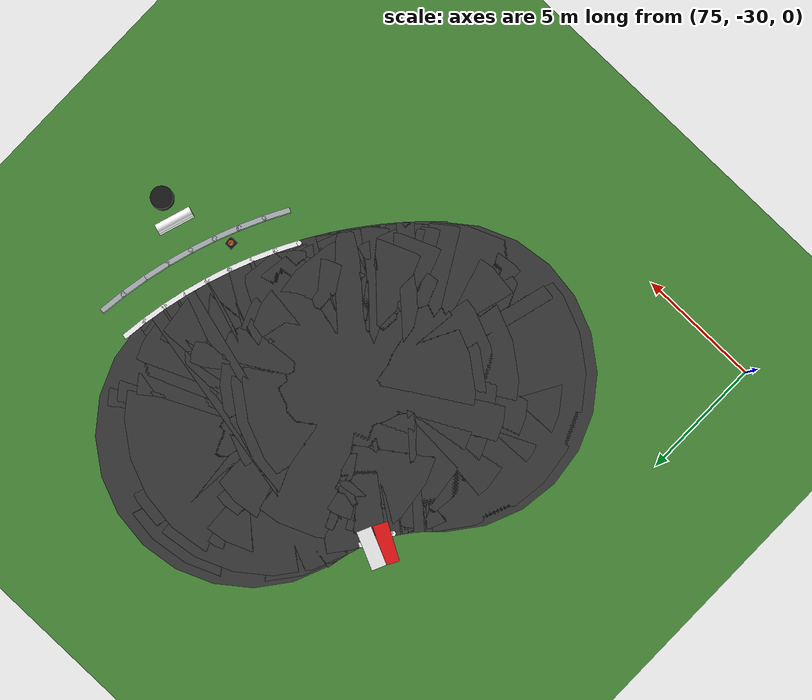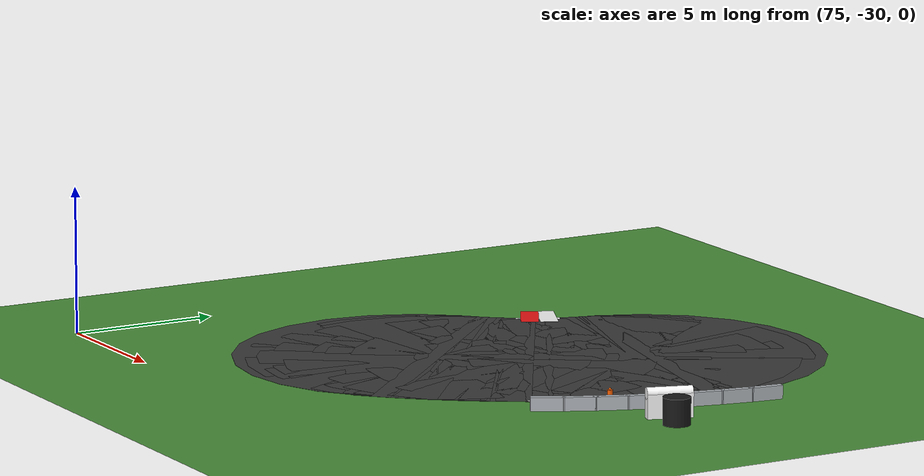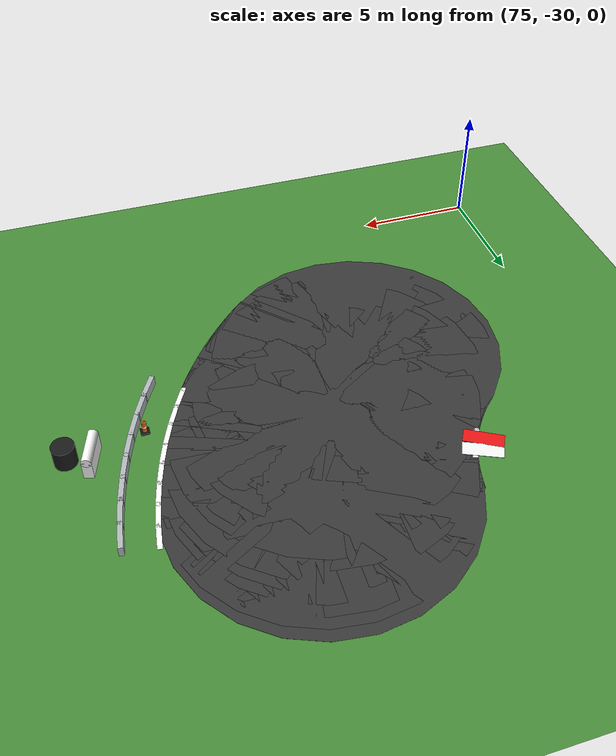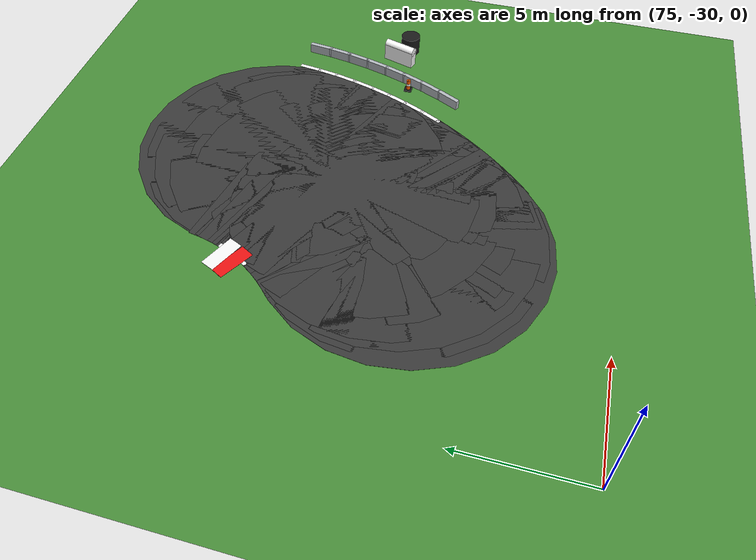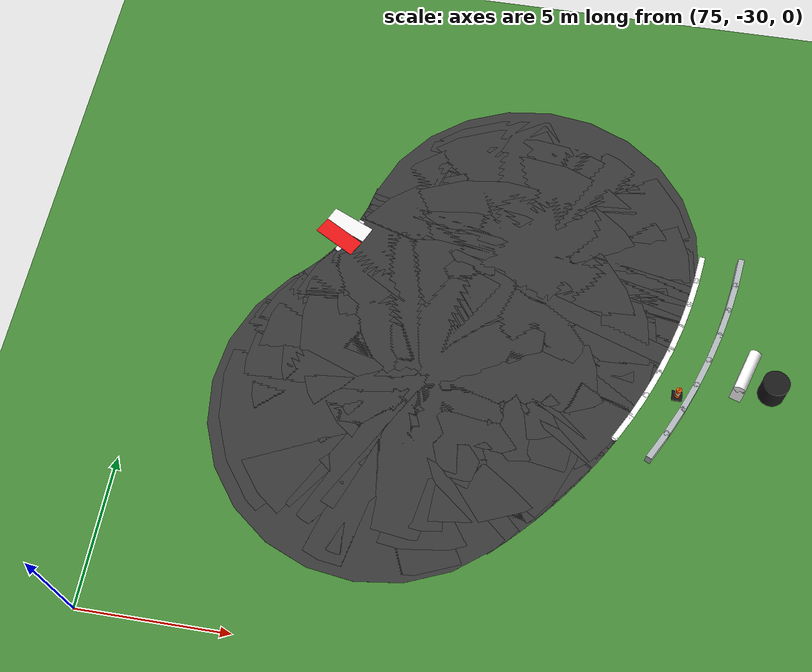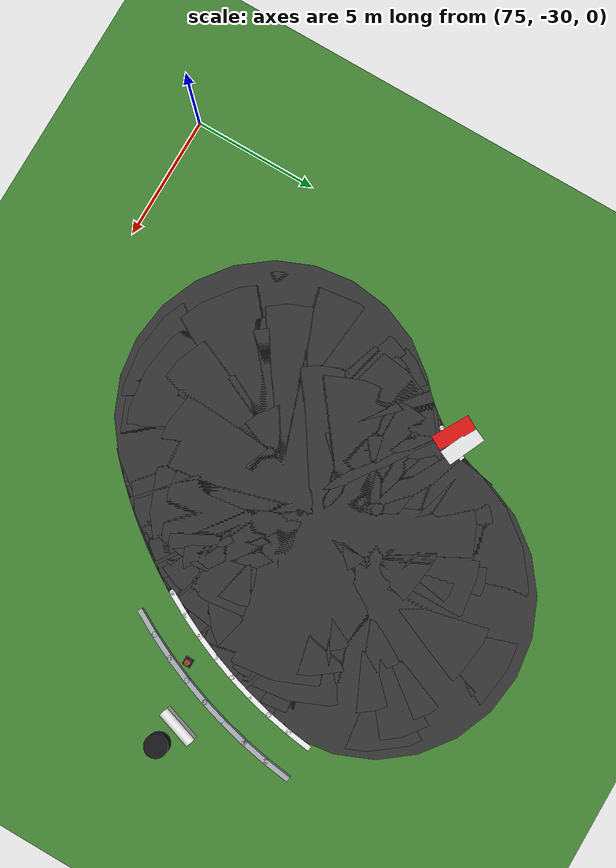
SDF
<sdf version="1.6">
 <world name="sem_silesia_ring_2026">
  <model name="ground_plane">
   <static>true</static>
   <link name="link">
    <collision name="collision">
     <geometry><plane><normal>0 0 1</normal><size>600 600</size></plane></geometry>
     <surface><friction><ode><mu>0.6</mu><mu2>0.6</mu2></ode></friction></surface>
    </collision>
    <visual name="visual">
     <geometry><plane><normal>0 0 1</normal><size>600 600</size></plane></geometry>
     <material><ambient>0.28 0.55 0.22 1</ambient><diffuse>0.28 0.55 0.22 1</diffuse></material>
    </visual>
   </link>
  </model>
  <model name="road_R_jnt21">
   <static>true</static>
   <pose>83.3641 -21.7893 0.0030 0 0 0</pose>
   <link name="link">
    <visual name="v">
     <geometry><cylinder><radius>6.0000</radius><length>0.0060</length></cylinder></geometry>
     <material><ambient>0.22 0.22 0.22 1</ambient><diffuse>0.22 0.22 0.22 1</diffuse></material>
    </visual>
    <collision name="c">
     <geometry><cylinder><radius>6.0000</radius><length>0.0060</length></cylinder></geometry>
     <surface><friction><ode><mu>0.9</mu><mu2>0.9</mu2></ode></friction></surface>
    </collision>
   </link>
  </model>
  <model name="road_R_s21">
   <static>true</static>
   <pose>83.5250 -21.6419 0.0030 0 0 0.7505</pose>
   <link name="link">
    <visual name="v">
     <geometry><box><size>0.6957 12.0000 0.0060</size></box></geometry>
     <material><ambient>0.22 0.22 0.22 1</ambient><diffuse>0.22 0.22 0.22 1</diffuse></material>
    </visual>
    <collision name="c">
     <geometry><box><size>0.6957 12.0000 0.0060</size></box></geometry>
     <surface><friction><ode><mu>0.9</mu><mu2>0.9</mu2></ode></friction></surface>
    </collision>
   </link>
  </model>
  <model name="road_R_jnt22">
   <static>true</static>
   <pose>83.6832 -21.4917 0.0030 0 0 0</pose>
   <link name="link">
    <visual name="v">
     <geometry><cylinder><radius>6.0000</radius><length>0.0060</length></cylinder></geometry>
     <material><ambient>0.22 0.22 0.22 1</ambient><diffuse>0.22 0.22 0.22 1</diffuse></material>
    </visual>
    <collision name="c">
     <geometry><cylinder><radius>6.0000</radius><length>0.0060</length></cylinder></geometry>
     <surface><friction><ode><mu>0.9</mu><mu2>0.9</mu2></ode></friction></surface>
    </collision>
   </link>
  </model>
  <model name="road_R_s22">
   <static>true</static>
   <pose>83.8388 -21.3388 0.0030 0 0 0.7854</pose>
   <link name="link">
    <visual name="v">
     <geometry><box><size>0.6957 12.0000 0.0060</size></box></geometry>
     <material><ambient>0.22 0.22 0.22 1</ambient><diffuse>0.22 0.22 0.22 1</diffuse></material>
    </visual>
    <collision name="c">
     <geometry><box><size>0.6957 12.0000 0.0060</size></box></geometry>
     <surface><friction><ode><mu>0.9</mu><mu2>0.9</mu2></ode></friction></surface>
    </collision>
   </link>
  </model>
  <model name="road_R_jnt23">
   <static>true</static>
   <pose>83.9917 -21.1832 0.0030 0 0 0</pose>
   <link name="link">
    <visual name="v">
     <geometry><cylinder><radius>6.0000</radius><length>0.0060</length></cylinder></geometry>
     <material><ambient>0.22 0.22 0.22 1</ambient><diffuse>0.22 0.22 0.22 1</diffuse></material>
    </visual>
    <collision name="c">
     <geometry><cylinder><radius>6.0000</radius><length>0.0060</length></cylinder></geometry>
     <surface><friction><ode><mu>0.9</mu><mu2>0.9</mu2></ode></friction></surface>
    </collision>
   </link>
  </model>
  <model name="road_R_s23">
   <static>true</static>
   <pose>84.1419 -21.0250 0.0030 0 0 0.8203</pose>
   <link name="link">
    <visual name="v">
     <geometry><box><size>0.6957 12.0000 0.0060</size></box></geometry>
     <material><ambient>0.22 0.22 0.22 1</ambient><diffuse>0.22 0.22 0.22 1</diffuse></material>
    </visual>
    <collision name="c">
     <geometry><box><size>0.6957 12.0000 0.0060</size></box></geometry>
     <surface><friction><ode><mu>0.9</mu><mu2>0.9</mu2></ode></friction></surface>
    </collision>
   </link>
  </model>
  <model name="road_R_jnt24">
   <static>true</static>
   <pose>84.2893 -20.8641 0.0030 0 0 0</pose>
   <link name="link">
    <visual name="v">
     <geometry><cylinder><radius>6.0000</radius><length>0.0060</length></cylinder></geometry>
     <material><ambient>0.22 0.22 0.22 1</ambient><diffuse>0.22 0.22 0.22 1</diffuse></material>
    </visual>
    <collision name="c">
     <geometry><cylinder><radius>6.0000</radius><length>0.0060</length></cylinder></geometry>
     <surface><friction><ode><mu>0.9</mu><mu2>0.9</mu2></ode></friction></surface>
    </collision>
   </link>
  </model>
  <model name="road_R_s24">
   <static>true</static>
   <pose>84.4339 -20.7007 0.0030 0 0 0.8552</pose>
   <link name="link">
    <visual name="v">
     <geometry><box><size>0.6957 12.0000 0.0060</size></box></geometry>
     <material><ambient>0.22 0.22 0.22 1</ambient><diffuse>0.22 0.22 0.22 1</diffuse></material>
    </visual>
    <collision name="c">
     <geometry><box><size>0.6957 12.0000 0.0060</size></box></geometry>
     <surface><friction><ode><mu>0.9</mu><mu2>0.9</mu2></ode></friction></surface>
    </collision>
   </link>
  </model>
  <model name="road_R_jnt25">
   <static>true</static>
   <pose>84.5756 -20.5348 0.0030 0 0 0</pose>
   <link name="link">
    <visual name="v">
     <geometry><cylinder><radius>6.0000</radius><length>0.0060</length></cylinder></geometry>
     <material><ambient>0.22 0.22 0.22 1</ambient><diffuse>0.22 0.22 0.22 1</diffuse></material>
    </visual>
    <collision name="c">
     <geometry><cylinder><radius>6.0000</radius><length>0.0060</length></cylinder></geometry>
     <surface><friction><ode><mu>0.9</mu><mu2>0.9</mu2></ode></friction></surface>
    </collision>
   </link>
  </model>
  <model name="road_R_s25">
   <static>true</static>
   <pose>84.7143 -20.3665 0.0030 0 0 0.8901</pose>
   <link name="link">
    <visual name="v">
     <geometry><box><size>0.6957 12.0000 0.0060</size></box></geometry>
     <material><ambient>0.22 0.22 0.22 1</ambient><diffuse>0.22 0.22 0.22 1</diffuse></material>
    </visual>
    <collision name="c">
     <geometry><box><size>0.6957 12.0000 0.0060</size></box></geometry>
     <surface><friction><ode><mu>0.9</mu><mu2>0.9</mu2></ode></friction></surface>
    </collision>
   </link>
  </model>
  <model name="road_R_jnt26">
   <static>true</static>
   <pose>84.8501 -20.1958 0.0030 0 0 0</pose>
   <link name="link">
    <visual name="v">
     <geometry><cylinder><radius>6.0000</radius><length>0.0060</length></cylinder></geometry>
     <material><ambient>0.22 0.22 0.22 1</ambient><diffuse>0.22 0.22 0.22 1</diffuse></material>
    </visual>
    <collision name="c">
     <geometry><cylinder><radius>6.0000</radius><length>0.0060</length></cylinder></geometry>
     <surface><friction><ode><mu>0.9</mu><mu2>0.9</mu2></ode></friction></surface>
    </collision>
   </link>
  </model>
  <model name="road_R_s26">
   <static>true</static>
   <pose>84.9829 -20.0227 0.0030 0 0 0.9250</pose>
   <link name="link">
    <visual name="v">
     <geometry><box><size>0.6957 12.0000 0.0060</size></box></geometry>
     <material><ambient>0.22 0.22 0.22 1</ambient><diffuse>0.22 0.22 0.22 1</diffuse></material>
    </visual>
    <collision name="c">
     <geometry><box><size>0.6957 12.0000 0.0060</size></box></geometry>
     <surface><friction><ode><mu>0.9</mu><mu2>0.9</mu2></ode></friction></surface>
    </collision>
   </link>
  </model>
  <model name="road_R_jnt27">
   <static>true</static>
   <pose>85.1127 -19.8473 0.0030 0 0 0</pose>
   <link name="link">
    <visual name="v">
     <geometry><cylinder><radius>6.0000</radius><length>0.0060</length></cylinder></geometry>
     <material><ambient>0.22 0.22 0.22 1</ambient><diffuse>0.22 0.22 0.22 1</diffuse></material>
    </visual>
    <collision name="c">
     <geometry><cylinder><radius>6.0000</radius><length>0.0060</length></cylinder></geometry>
     <surface><friction><ode><mu>0.9</mu><mu2>0.9</mu2></ode></friction></surface>
    </collision>
   </link>
  </model>
  <model name="road_R_s27">
   <static>true</static>
   <pose>85.2394 -19.6697 0.0030 0 0 0.9599</pose>
   <link name="link">
    <visual name="v">
     <geometry><box><size>0.6957 12.0000 0.0060</size></box></geometry>
     <material><ambient>0.22 0.22 0.22 1</ambient><diffuse>0.22 0.22 0.22 1</diffuse></material>
    </visual>
    <collision name="c">
     <geometry><box><size>0.6957 12.0000 0.0060</size></box></geometry>
     <surface><friction><ode><mu>0.9</mu><mu2>0.9</mu2></ode></friction></surface>
    </collision>
   </link>
  </model>
  <model name="road_R_jnt28">
   <static>true</static>
   <pose>85.3630 -19.4899 0.0030 0 0 0</pose>
   <link name="link">
    <visual name="v">
     <geometry><cylinder><radius>6.0000</radius><length>0.0060</length></cylinder></geometry>
     <material><ambient>0.22 0.22 0.22 1</ambient><diffuse>0.22 0.22 0.22 1</diffuse></material>
    </visual>
    <collision name="c">
     <geometry><cylinder><radius>6.0000</radius><length>0.0060</length></cylinder></geometry>
     <surface><friction><ode><mu>0.9</mu><mu2>0.9</mu2></ode></friction></surface>
    </collision>
   </link>
  </model>
  <model name="road_R_s28">
   <static>true</static>
   <pose>85.4834 -19.3080 0.0030 0 0 0.9948</pose>
   <link name="link">
    <visual name="v">
     <geometry><box><size>0.6957 12.0000 0.0060</size></box></geometry>
     <material><ambient>0.22 0.22 0.22 1</ambient><diffuse>0.22 0.22 0.22 1</diffuse></material>
    </visual>
    <collision name="c">
     <geometry><box><size>0.6957 12.0000 0.0060</size></box></geometry>
     <surface><friction><ode><mu>0.9</mu><mu2>0.9</mu2></ode></friction></surface>
    </collision>
   </link>
  </model>
  <model name="road_R_jnt29">
   <static>true</static>
   <pose>85.6006 -19.1240 0.0030 0 0 0</pose>
   <link name="link">
    <visual name="v">
     <geometry><cylinder><radius>6.0000</radius><length>0.0060</length></cylinder></geometry>
     <material><ambient>0.22 0.22 0.22 1</ambient><diffuse>0.22 0.22 0.22 1</diffuse></material>
    </visual>
    <collision name="c">
     <geometry><cylinder><radius>6.0000</radius><length>0.0060</length></cylinder></geometry>
     <surface><friction><ode><mu>0.9</mu><mu2>0.9</mu2></ode></friction></surface>
    </collision>
   </link>
  </model>
  <model name="road_R_s29">
   <static>true</static>
   <pose>85.7146 -18.9380 0.0030 0 0 1.0297</pose>
   <link name="link">
    <visual name="v">
     <geometry><box><size>0.6957 12.0000 0.0060</size></box></geometry>
     <material><ambient>0.22 0.22 0.22 1</ambient><diffuse>0.22 0.22 0.22 1</diffuse></material>
    </visual>
    <collision name="c">
     <geometry><box><size>0.6957 12.0000 0.0060</size></box></geometry>
     <surface><friction><ode><mu>0.9</mu><mu2>0.9</mu2></ode></friction></surface>
    </collision>
   </link>
  </model>
  <model name="road_R_jnt30">
   <static>true</static>
   <pose>85.8253 -18.7500 0.0030 0 0 0</pose>
   <link name="link">
    <visual name="v">
     <geometry><cylinder><radius>6.0000</radius><length>0.0060</length></cylinder></geometry>
     <material><ambient>0.22 0.22 0.22 1</ambient><diffuse>0.22 0.22 0.22 1</diffuse></material>
    </visual>
    <collision name="c">
     <geometry><cylinder><radius>6.0000</radius><length>0.0060</length></cylinder></geometry>
     <surface><friction><ode><mu>0.9</mu><mu2>0.9</mu2></ode></friction></surface>
    </collision>
   </link>
  </model>
  <model name="road_R_s30">
   <static>true</static>
   <pose>85.9327 -18.5601 0.0030 0 0 1.0647</pose>
   <link name="link">
    <visual name="v">
     <geometry><box><size>0.6957 12.0000 0.0060</size></box></geometry>
     <material><ambient>0.22 0.22 0.22 1</ambient><diffuse>0.22 0.22 0.22 1</diffuse></material>
    </visual>
    <collision name="c">
     <geometry><box><size>0.6957 12.0000 0.0060</size></box></geometry>
     <surface><friction><ode><mu>0.9</mu><mu2>0.9</mu2></ode></friction></surface>
    </collision>
   </link>
  </model>
  <model name="road_R_jnt31">
   <static>true</static>
   <pose>86.0368 -18.3684 0.0030 0 0 0</pose>
   <link name="link">
    <visual name="v">
     <geometry><cylinder><radius>6.0000</radius><length>0.0060</length></cylinder></geometry>
     <material><ambient>0.22 0.22 0.22 1</ambient><diffuse>0.22 0.22 0.22 1</diffuse></material>
    </visual>
    <collision name="c">
     <geometry><cylinder><radius>6.0000</radius><length>0.0060</length></cylinder></geometry>
     <surface><friction><ode><mu>0.9</mu><mu2>0.9</mu2></ode></friction></surface>
    </collision>
   </link>
  </model>
  <model name="road_R_s31">
   <static>true</static>
   <pose>86.1376 -18.1749 0.0030 0 0 1.0996</pose>
   <link name="link">
    <visual name="v">
     <geometry><box><size>0.6957 12.0000 0.0060</size></box></geometry>
     <material><ambient>0.22 0.22 0.22 1</ambient><diffuse>0.22 0.22 0.22 1</diffuse></material>
    </visual>
    <collision name="c">
     <geometry><box><size>0.6957 12.0000 0.0060</size></box></geometry>
     <surface><friction><ode><mu>0.9</mu><mu2>0.9</mu2></ode></friction></surface>
    </collision>
   </link>
  </model>
  <model name="road_R_jnt32">
   <static>true</static>
   <pose>86.2349 -17.9796 0.0030 0 0 0</pose>
   <link name="link">
    <visual name="v">
     <geometry><cylinder><radius>6.0000</radius><length>0.0060</length></cylinder></geometry>
     <material><ambient>0.22 0.22 0.22 1</ambient><diffuse>0.22 0.22 0.22 1</diffuse></material>
    </visual>
    <collision name="c">
     <geometry><cylinder><radius>6.0000</radius><length>0.0060</length></cylinder></geometry>
     <surface><friction><ode><mu>0.9</mu><mu2>0.9</mu2></ode></friction></surface>
    </collision>
   </link>
  </model>
  <model name="road_R_s32">
   <static>true</static>
   <pose>86.3288 -17.7827 0.0030 0 0 1.1345</pose>
   <link name="link">
    <visual name="v">
     <geometry><box><size>0.6957 12.0000 0.0060</size></box></geometry>
     <material><ambient>0.22 0.22 0.22 1</ambient><diffuse>0.22 0.22 0.22 1</diffuse></material>
    </visual>
    <collision name="c">
     <geometry><box><size>0.6957 12.0000 0.0060</size></box></geometry>
     <surface><friction><ode><mu>0.9</mu><mu2>0.9</mu2></ode></friction></surface>
    </collision>
   </link>
  </model>
  <model name="road_R_jnt33">
   <static>true</static>
   <pose>86.4193 -17.5842 0.0030 0 0 0</pose>
   <link name="link">
    <visual name="v">
     <geometry><cylinder><radius>6.0000</radius><length>0.0060</length></cylinder></geometry>
     <material><ambient>0.22 0.22 0.22 1</ambient><diffuse>0.22 0.22 0.22 1</diffuse></material>
    </visual>
    <collision name="c">
     <geometry><cylinder><radius>6.0000</radius><length>0.0060</length></cylinder></geometry>
     <surface><friction><ode><mu>0.9</mu><mu2>0.9</mu2></ode></friction></surface>
    </collision>
   </link>
  </model>
  <model name="road_R_s33">
   <static>true</static>
   <pose>86.5063 -17.3841 0.0030 0 0 1.1694</pose>
   <link name="link">
    <visual name="v">
     <geometry><box><size>0.6957 12.0000 0.0060</size></box></geometry>
     <material><ambient>0.22 0.22 0.22 1</ambient><diffuse>0.22 0.22 0.22 1</diffuse></material>
    </visual>
    <collision name="c">
     <geometry><box><size>0.6957 12.0000 0.0060</size></box></geometry>
     <surface><friction><ode><mu>0.9</mu><mu2>0.9</mu2></ode></friction></surface>
    </collision>
   </link>
  </model>
  <model name="road_R_jnt34">
   <static>true</static>
   <pose>86.5898 -17.1826 0.0030 0 0 0</pose>
   <link name="link">
    <visual name="v">
     <geometry><cylinder><radius>6.0000</radius><length>0.0060</length></cylinder></geometry>
     <material><ambient>0.22 0.22 0.22 1</ambient><diffuse>0.22 0.22 0.22 1</diffuse></material>
    </visual>
    <collision name="c">
     <geometry><cylinder><radius>6.0000</radius><length>0.0060</length></cylinder></geometry>
     <surface><friction><ode><mu>0.9</mu><mu2>0.9</mu2></ode></friction></surface>
    </collision>
   </link>
  </model>
  <model name="road_R_s34">
   <static>true</static>
   <pose>86.6698 -16.9796 0.0030 0 0 1.2043</pose>
   <link name="link">
    <visual name="v">
     <geometry><box><size>0.6957 12.0000 0.0060</size></box></geometry>
     <material><ambient>0.22 0.22 0.22 1</ambient><diffuse>0.22 0.22 0.22 1</diffuse></material>
    </visual>
    <collision name="c">
     <geometry><box><size>0.6957 12.0000 0.0060</size></box></geometry>
     <surface><friction><ode><mu>0.9</mu><mu2>0.9</mu2></ode></friction></surface>
    </collision>
   </link>
  </model>
  <model name="road_R_jnt35">
   <static>true</static>
   <pose>86.7462 -16.7753 0.0030 0 0 0</pose>
   <link name="link">
    <visual name="v">
     <geometry><cylinder><radius>6.0000</radius><length>0.0060</length></cylinder></geometry>
     <material><ambient>0.22 0.22 0.22 1</ambient><diffuse>0.22 0.22 0.22 1</diffuse></material>
    </visual>
    <collision name="c">
     <geometry><cylinder><radius>6.0000</radius><length>0.0060</length></cylinder></geometry>
     <surface><friction><ode><mu>0.9</mu><mu2>0.9</mu2></ode></friction></surface>
    </collision>
   </link>
  </model>
  <model name="road_R_s35">
   <static>true</static>
   <pose>86.8190 -16.5696 0.0030 0 0 1.2392</pose>
   <link name="link">
    <visual name="v">
     <geometry><box><size>0.6957 12.0000 0.0060</size></box></geometry>
     <material><ambient>0.22 0.22 0.22 1</ambient><diffuse>0.22 0.22 0.22 1</diffuse></material>
    </visual>
    <collision name="c">
     <geometry><box><size>0.6957 12.0000 0.0060</size></box></geometry>
     <surface><friction><ode><mu>0.9</mu><mu2>0.9</mu2></ode></friction></surface>
    </collision>
   </link>
  </model>
  <model name="road_R_jnt36">
   <static>true</static>
   <pose>86.8882 -16.3627 0.0030 0 0 0</pose>
   <link name="link">
    <visual name="v">
     <geometry><cylinder><radius>6.0000</radius><length>0.0060</length></cylinder></geometry>
     <material><ambient>0.22 0.22 0.22 1</ambient><diffuse>0.22 0.22 0.22 1</diffuse></material>
    </visual>
    <collision name="c">
     <geometry><cylinder><radius>6.0000</radius><length>0.0060</length></cylinder></geometry>
     <surface><friction><ode><mu>0.9</mu><mu2>0.9</mu2></ode></friction></surface>
    </collision>
   </link>
  </model>
  <model name="road_R_s36">
   <static>true</static>
   <pose>86.9538 -16.1546 0.0030 0 0 1.2741</pose>
   <link name="link">
    <visual name="v">
     <geometry><box><size>0.6957 12.0000 0.0060</size></box></geometry>
     <material><ambient>0.22 0.22 0.22 1</ambient><diffuse>0.22 0.22 0.22 1</diffuse></material>
    </visual>
    <collision name="c">
     <geometry><box><size>0.6957 12.0000 0.0060</size></box></geometry>
     <surface><friction><ode><mu>0.9</mu><mu2>0.9</mu2></ode></friction></surface>
    </collision>
   </link>
  </model>
  <model name="road_R_jnt37">
   <static>true</static>
   <pose>87.0158 -15.9455 0.0030 0 0 0</pose>
   <link name="link">
    <visual name="v">
     <geometry><cylinder><radius>6.0000</radius><length>0.0060</length></cylinder></geometry>
     <material><ambient>0.22 0.22 0.22 1</ambient><diffuse>0.22 0.22 0.22 1</diffuse></material>
    </visual>
    <collision name="c">
     <geometry><cylinder><radius>6.0000</radius><length>0.0060</length></cylinder></geometry>
     <surface><friction><ode><mu>0.9</mu><mu2>0.9</mu2></ode></friction></surface>
    </collision>
   </link>
  </model>
  <model name="road_R_s37">
   <static>true</static>
   <pose>87.0741 -15.7352 0.0030 0 0 1.3090</pose>
   <link name="link">
    <visual name="v">
     <geometry><box><size>0.6957 12.0000 0.0060</size></box></geometry>
     <material><ambient>0.22 0.22 0.22 1</ambient><diffuse>0.22 0.22 0.22 1</diffuse></material>
    </visual>
    <collision name="c">
     <geometry><box><size>0.6957 12.0000 0.0060</size></box></geometry>
     <surface><friction><ode><mu>0.9</mu><mu2>0.9</mu2></ode></friction></surface>
    </collision>
   </link>
  </model>
  <model name="road_R_jnt38">
   <static>true</static>
   <pose>87.1287 -15.5240 0.0030 0 0 0</pose>
   <link name="link">
    <visual name="v">
     <geometry><cylinder><radius>6.0000</radius><length>0.0060</length></cylinder></geometry>
     <material><ambient>0.22 0.22 0.22 1</ambient><diffuse>0.22 0.22 0.22 1</diffuse></material>
    </visual>
    <collision name="c">
     <geometry><cylinder><radius>6.0000</radius><length>0.0060</length></cylinder></geometry>
     <surface><friction><ode><mu>0.9</mu><mu2>0.9</mu2></ode></friction></surface>
    </collision>
   </link>
  </model>
  <model name="road_R_s38">
   <static>true</static>
   <pose>87.1796 -15.3119 0.0030 0 0 1.3439</pose>
   <link name="link">
    <visual name="v">
     <geometry><box><size>0.6957 12.0000 0.0060</size></box></geometry>
     <material><ambient>0.22 0.22 0.22 1</ambient><diffuse>0.22 0.22 0.22 1</diffuse></material>
    </visual>
    <collision name="c">
     <geometry><box><size>0.6957 12.0000 0.0060</size></box></geometry>
     <surface><friction><ode><mu>0.9</mu><mu2>0.9</mu2></ode></friction></surface>
    </collision>
   </link>
  </model>
  <model name="road_R_jnt39">
   <static>true</static>
   <pose>87.2268 -15.0989 0.0030 0 0 0</pose>
   <link name="link">
    <visual name="v">
     <geometry><cylinder><radius>6.0000</radius><length>0.0060</length></cylinder></geometry>
     <material><ambient>0.22 0.22 0.22 1</ambient><diffuse>0.22 0.22 0.22 1</diffuse></material>
    </visual>
    <collision name="c">
     <geometry><cylinder><radius>6.0000</radius><length>0.0060</length></cylinder></geometry>
     <surface><friction><ode><mu>0.9</mu><mu2>0.9</mu2></ode></friction></surface>
    </collision>
   </link>
  </model>
  <model name="road_R_s39">
   <static>true</static>
   <pose>87.2703 -14.8851 0.0030 0 0 1.3788</pose>
   <link name="link">
    <visual name="v">
     <geometry><box><size>0.6957 12.0000 0.0060</size></box></geometry>
     <material><ambient>0.22 0.22 0.22 1</ambient><diffuse>0.22 0.22 0.22 1</diffuse></material>
    </visual>
    <collision name="c">
     <geometry><box><size>0.6957 12.0000 0.0060</size></box></geometry>
     <surface><friction><ode><mu>0.9</mu><mu2>0.9</mu2></ode></friction></surface>
    </collision>
   </link>
  </model>
  <model name="wl_Ro_jnt20">
   <static>true</static>
   <pose>90.9349 -21.7000 0.0050 0 0 0</pose>
   <link name="link">
    <visual name="v">
     <geometry><cylinder><radius>0.1000</radius><length>0.0040</length></cylinder></geometry>
     <material><ambient>1 1 1 1</ambient><diffuse>1 1 1 1</diffuse></material>
    </visual>
    <collision name="c">
     <geometry><cylinder><radius>0.1000</radius><length>0.0040</length></cylinder></geometry>
     <surface><friction><ode><mu>0.9</mu><mu2>0.9</mu2></ode></friction></surface>
    </collision>
   </link>
  </model>
  <model name="wl_Ro_s20">
   <static>true</static>
   <pose>91.1702 -21.2797 0.0050 0 0 1.0734</pose>
   <link name="link">
    <visual name="v">
     <geometry><box><size>1.0185 0.2000 0.0040</size></box></geometry>
     <material><ambient>1 1 1 1</ambient><diffuse>1 1 1 1</diffuse></material>
    </visual>
    <collision name="c">
     <geometry><box><size>1.0185 0.2000 0.0040</size></box></geometry>
     <surface><friction><ode><mu>0.9</mu><mu2>0.9</mu2></ode></friction></surface>
    </collision>
   </link>
  </model>
  <model name="wl_Ro_jnt21">
   <static>true</static>
   <pose>91.3945 -20.8534 0.0050 0 0 0</pose>
   <link name="link">
    <visual name="v">
     <geometry><cylinder><radius>0.1000</radius><length>0.0040</length></cylinder></geometry>
     <material><ambient>1 1 1 1</ambient><diffuse>1 1 1 1</diffuse></material>
    </visual>
    <collision name="c">
     <geometry><cylinder><radius>0.1000</radius><length>0.0040</length></cylinder></geometry>
     <surface><friction><ode><mu>0.9</mu><mu2>0.9</mu2></ode></friction></surface>
    </collision>
   </link>
  </model>
  <model name="wl_Ro_s21">
   <static>true</static>
   <pose>91.6076 -20.4214 0.0050 0 0 1.1257</pose>
   <link name="link">
    <visual name="v">
     <geometry><box><size>1.0185 0.2000 0.0040</size></box></geometry>
     <material><ambient>1 1 1 1</ambient><diffuse>1 1 1 1</diffuse></material>
    </visual>
    <collision name="c">
     <geometry><box><size>1.0185 0.2000 0.0040</size></box></geometry>
     <surface><friction><ode><mu>0.9</mu><mu2>0.9</mu2></ode></friction></surface>
    </collision>
   </link>
  </model>
  <model name="wl_Ro_jnt22">
   <static>true</static>
   <pose>91.8092 -19.9840 0.0050 0 0 0</pose>
   <link name="link">
    <visual name="v">
     <geometry><cylinder><radius>0.1000</radius><length>0.0040</length></cylinder></geometry>
     <material><ambient>1 1 1 1</ambient><diffuse>1 1 1 1</diffuse></material>
    </visual>
    <collision name="c">
     <geometry><cylinder><radius>0.1000</radius><length>0.0040</length></cylinder></geometry>
     <surface><friction><ode><mu>0.9</mu><mu2>0.9</mu2></ode></friction></surface>
    </collision>
   </link>
  </model>
  <model name="wl_Ro_s22">
   <static>true</static>
   <pose>91.9994 -19.5414 0.0050 0 0 1.1781</pose>
   <link name="link">
    <visual name="v">
     <geometry><box><size>1.0185 0.2000 0.0040</size></box></geometry>
     <material><ambient>1 1 1 1</ambient><diffuse>1 1 1 1</diffuse></material>
    </visual>
    <collision name="c">
     <geometry><box><size>1.0185 0.2000 0.0040</size></box></geometry>
     <surface><friction><ode><mu>0.9</mu><mu2>0.9</mu2></ode></friction></surface>
    </collision>
   </link>
  </model>
  <model name="wl_Ro_jnt23">
   <static>true</static>
   <pose>92.1779 -19.0940 0.0050 0 0 0</pose>
   <link name="link">
    <visual name="v">
     <geometry><cylinder><radius>0.1000</radius><length>0.0040</length></cylinder></geometry>
     <material><ambient>1 1 1 1</ambient><diffuse>1 1 1 1</diffuse></material>
    </visual>
    <collision name="c">
     <geometry><cylinder><radius>0.1000</radius><length>0.0040</length></cylinder></geometry>
     <surface><friction><ode><mu>0.9</mu><mu2>0.9</mu2></ode></friction></surface>
    </collision>
   </link>
  </model>
  <model name="wl_Ro_s23">
   <static>true</static>
   <pose>92.3446 -18.6420 0.0050 0 0 1.2305</pose>
   <link name="link">
    <visual name="v">
     <geometry><box><size>1.0185 0.2000 0.0040</size></box></geometry>
     <material><ambient>1 1 1 1</ambient><diffuse>1 1 1 1</diffuse></material>
    </visual>
    <collision name="c">
     <geometry><box><size>1.0185 0.2000 0.0040</size></box></geometry>
     <surface><friction><ode><mu>0.9</mu><mu2>0.9</mu2></ode></friction></surface>
    </collision>
   </link>
  </model>
  <model name="wl_Ro_jnt24">
   <static>true</static>
   <pose>92.4994 -18.1859 0.0050 0 0 0</pose>
   <link name="link">
    <visual name="v">
     <geometry><cylinder><radius>0.1000</radius><length>0.0040</length></cylinder></geometry>
     <material><ambient>1 1 1 1</ambient><diffuse>1 1 1 1</diffuse></material>
    </visual>
    <collision name="c">
     <geometry><cylinder><radius>0.1000</radius><length>0.0040</length></cylinder></geometry>
     <surface><friction><ode><mu>0.9</mu><mu2>0.9</mu2></ode></friction></surface>
    </collision>
   </link>
  </model>
  <model name="wl_Ro_s24">
   <static>true</static>
   <pose>92.6423 -17.7259 0.0050 0 0 1.2828</pose>
   <link name="link">
    <visual name="v">
     <geometry><box><size>1.0185 0.2000 0.0040</size></box></geometry>
     <material><ambient>1 1 1 1</ambient><diffuse>1 1 1 1</diffuse></material>
    </visual>
    <collision name="c">
     <geometry><box><size>1.0185 0.2000 0.0040</size></box></geometry>
     <surface><friction><ode><mu>0.9</mu><mu2>0.9</mu2></ode></friction></surface>
    </collision>
   </link>
  </model>
  <model name="wl_Ro_jnt25">
   <static>true</static>
   <pose>92.7730 -17.2623 0.0050 0 0 0</pose>
   <link name="link">
    <visual name="v">
     <geometry><cylinder><radius>0.1000</radius><length>0.0040</length></cylinder></geometry>
     <material><ambient>1 1 1 1</ambient><diffuse>1 1 1 1</diffuse></material>
    </visual>
    <collision name="c">
     <geometry><cylinder><radius>0.1000</radius><length>0.0040</length></cylinder></geometry>
     <surface><friction><ode><mu>0.9</mu><mu2>0.9</mu2></ode></friction></surface>
    </collision>
   </link>
  </model>
  <model name="wl_Ro_s25">
   <static>true</static>
   <pose>92.8916 -16.7954 0.0050 0 0 1.3352</pose>
   <link name="link">
    <visual name="v">
     <geometry><box><size>1.0185 0.2000 0.0040</size></box></geometry>
     <material><ambient>1 1 1 1</ambient><diffuse>1 1 1 1</diffuse></material>
    </visual>
    <collision name="c">
     <geometry><box><size>1.0185 0.2000 0.0040</size></box></geometry>
     <surface><friction><ode><mu>0.9</mu><mu2>0.9</mu2></ode></friction></surface>
    </collision>
   </link>
  </model>
  <model name="wl_Ro_jnt26">
   <static>true</static>
   <pose>92.9979 -16.3256 0.0050 0 0 0</pose>
   <link name="link">
    <visual name="v">
     <geometry><cylinder><radius>0.1000</radius><length>0.0040</length></cylinder></geometry>
     <material><ambient>1 1 1 1</ambient><diffuse>1 1 1 1</diffuse></material>
    </visual>
    <collision name="c">
     <geometry><cylinder><radius>0.1000</radius><length>0.0040</length></cylinder></geometry>
     <surface><friction><ode><mu>0.9</mu><mu2>0.9</mu2></ode></friction></surface>
    </collision>
   </link>
  </model>
  <model name="wl_Ro_s26">
   <static>true</static>
   <pose>93.0919 -15.8531 0.0050 0 0 1.3875</pose>
   <link name="link">
    <visual name="v">
     <geometry><box><size>1.0185 0.2000 0.0040</size></box></geometry>
     <material><ambient>1 1 1 1</ambient><diffuse>1 1 1 1</diffuse></material>
    </visual>
    <collision name="c">
     <geometry><box><size>1.0185 0.2000 0.0040</size></box></geometry>
     <surface><friction><ode><mu>0.9</mu><mu2>0.9</mu2></ode></friction></surface>
    </collision>
   </link>
  </model>
  <model name="wl_Ro_jnt27">
   <static>true</static>
   <pose>93.1735 -15.3784 0.0050 0 0 0</pose>
   <link name="link">
    <visual name="v">
     <geometry><cylinder><radius>0.1000</radius><length>0.0040</length></cylinder></geometry>
     <material><ambient>1 1 1 1</ambient><diffuse>1 1 1 1</diffuse></material>
    </visual>
    <collision name="c">
     <geometry><cylinder><radius>0.1000</radius><length>0.0040</length></cylinder></geometry>
     <surface><friction><ode><mu>0.9</mu><mu2>0.9</mu2></ode></friction></surface>
    </collision>
   </link>
  </model>
  <model name="wl_Ro_s27">
   <static>true</static>
   <pose>93.2426 -14.9017 0.0050 0 0 1.4399</pose>
   <link name="link">
    <visual name="v">
     <geometry><box><size>1.0185 0.2000 0.0040</size></box></geometry>
     <material><ambient>1 1 1 1</ambient><diffuse>1 1 1 1</diffuse></material>
    </visual>
    <collision name="c">
     <geometry><box><size>1.0185 0.2000 0.0040</size></box></geometry>
     <surface><friction><ode><mu>0.9</mu><mu2>0.9</mu2></ode></friction></surface>
    </collision>
   </link>
  </model>
  <model name="wl_Ri_jnt19">
   <static>true</static>
   <pose>80.5352 -16.0946 0.0050 0 0 0</pose>
   <link name="link">
    <visual name="v">
     <geometry><cylinder><radius>0.1000</radius><length>0.0040</length></cylinder></geometry>
     <material><ambient>1 1 1 1</ambient><diffuse>1 1 1 1</diffuse></material>
    </visual>
    <collision name="c">
     <geometry><cylinder><radius>0.1000</radius><length>0.0040</length></cylinder></geometry>
     <surface><friction><ode><mu>0.9</mu><mu2>0.9</mu2></ode></friction></surface>
    </collision>
   </link>
  </model>
  <model name="wl_Ri_s19">
   <static>true</static>
   <pose>80.6274 -15.9485 0.0050 0 0 1.0210</pose>
   <link name="link">
    <visual name="v">
     <geometry><box><size>0.4008 0.2000 0.0040</size></box></geometry>
     <material><ambient>1 1 1 1</ambient><diffuse>1 1 1 1</diffuse></material>
    </visual>
    <collision name="c">
     <geometry><box><size>0.4008 0.2000 0.0040</size></box></geometry>
     <surface><friction><ode><mu>0.9</mu><mu2>0.9</mu2></ode></friction></surface>
    </collision>
   </link>
  </model>
  <model name="wl_Ri_jnt20">
   <static>true</static>
   <pose>80.7158 -15.8000 0.0050 0 0 0</pose>
   <link name="link">
    <visual name="v">
     <geometry><cylinder><radius>0.1000</radius><length>0.0040</length></cylinder></geometry>
     <material><ambient>1 1 1 1</ambient><diffuse>1 1 1 1</diffuse></material>
    </visual>
    <collision name="c">
     <geometry><cylinder><radius>0.1000</radius><length>0.0040</length></cylinder></geometry>
     <surface><friction><ode><mu>0.9</mu><mu2>0.9</mu2></ode></friction></surface>
    </collision>
   </link>
  </model>
  <model name="wl_Ri_s20">
   <static>true</static>
   <pose>80.8002 -15.6492 0.0050 0 0 1.0734</pose>
   <link name="link">
    <visual name="v">
     <geometry><box><size>0.4008 0.2000 0.0040</size></box></geometry>
     <material><ambient>1 1 1 1</ambient><diffuse>1 1 1 1</diffuse></material>
    </visual>
    <collision name="c">
     <geometry><box><size>0.4008 0.2000 0.0040</size></box></geometry>
     <surface><friction><ode><mu>0.9</mu><mu2>0.9</mu2></ode></friction></surface>
    </collision>
   </link>
  </model>
  <model name="wl_Ri_jnt21">
   <static>true</static>
   <pose>80.8806 -15.4963 0.0050 0 0 0</pose>
   <link name="link">
    <visual name="v">
     <geometry><cylinder><radius>0.1000</radius><length>0.0040</length></cylinder></geometry>
     <material><ambient>1 1 1 1</ambient><diffuse>1 1 1 1</diffuse></material>
    </visual>
    <collision name="c">
     <geometry><cylinder><radius>0.1000</radius><length>0.0040</length></cylinder></geometry>
     <surface><friction><ode><mu>0.9</mu><mu2>0.9</mu2></ode></friction></surface>
    </collision>
   </link>
  </model>
  <model name="wl_Ri_s21">
   <static>true</static>
   <pose>80.9571 -15.3414 0.0050 0 0 1.1257</pose>
   <link name="link">
    <visual name="v">
     <geometry><box><size>0.4008 0.2000 0.0040</size></box></geometry>
     <material><ambient>1 1 1 1</ambient><diffuse>1 1 1 1</diffuse></material>
    </visual>
    <collision name="c">
     <geometry><box><size>0.4008 0.2000 0.0040</size></box></geometry>
     <surface><friction><ode><mu>0.9</mu><mu2>0.9</mu2></ode></friction></surface>
    </collision>
   </link>
  </model>
  <model name="wl_Ri_jnt22">
   <static>true</static>
   <pose>81.0294 -15.1845 0.0050 0 0 0</pose>
   <link name="link">
    <visual name="v">
     <geometry><cylinder><radius>0.1000</radius><length>0.0040</length></cylinder></geometry>
     <material><ambient>1 1 1 1</ambient><diffuse>1 1 1 1</diffuse></material>
    </visual>
    <collision name="c">
     <geometry><cylinder><radius>0.1000</radius><length>0.0040</length></cylinder></geometry>
     <surface><friction><ode><mu>0.9</mu><mu2>0.9</mu2></ode></friction></surface>
    </collision>
   </link>
  </model>
  <model name="wl_Ri_s22">
   <static>true</static>
   <pose>81.0976 -15.0257 0.0050 0 0 1.1781</pose>
   <link name="link">
    <visual name="v">
     <geometry><box><size>0.4008 0.2000 0.0040</size></box></geometry>
     <material><ambient>1 1 1 1</ambient><diffuse>1 1 1 1</diffuse></material>
    </visual>
    <collision name="c">
     <geometry><box><size>0.4008 0.2000 0.0040</size></box></geometry>
     <surface><friction><ode><mu>0.9</mu><mu2>0.9</mu2></ode></friction></surface>
    </collision>
   </link>
  </model>
  <model name="kR_in_k4">
   <static>true</static>
   <pose>80.4724 -15.6214 0.0120 0 0 1.0524</pose>
   <link name="link">
    <visual name="v">
     <geometry><box><size>0.6135 1.6000 0.0120</size></box></geometry>
     <material><ambient>0.92 0.08 0.08 1</ambient><diffuse>0.92 0.08 0.08 1</diffuse></material>
    </visual>
    <collision name="c">
     <geometry><box><size>0.6135 1.6000 0.0120</size></box></geometry>
     <surface><friction><ode><mu>0.9</mu><mu2>0.9</mu2></ode></friction></surface>
    </collision>
   </link>
  </model>
  <model name="kR_in_k5">
   <static>true</static>
   <pose>80.7418 -15.0925 0.0120 0 0 1.1467</pose>
   <link name="link">
    <visual name="v">
     <geometry><box><size>0.6135 1.6000 0.0120</size></box></geometry>
     <material><ambient>0.96 0.96 0.96 1</ambient><diffuse>0.96 0.96 0.96 1</diffuse></material>
    </visual>
    <collision name="c">
     <geometry><box><size>0.6135 1.6000 0.0120</size></box></geometry>
     <surface><friction><ode><mu>0.9</mu><mu2>0.9</mu2></ode></friction></surface>
    </collision>
   </link>
  </model>
  <model name="arm_Ro_s20">
   <static>true</static>
   <pose>92.3127 -21.9000 0.2250 0 0 1.0734</pose>
   <link name="link">
    <visual name="v">
     <geometry><box><size>1.0866 0.2000 0.4500</size></box></geometry>
     <material><ambient>0.70 0.72 0.74 1</ambient><diffuse>0.70 0.72 0.74 1</diffuse></material>
    </visual>
    <collision name="c">
     <geometry><box><size>1.0866 0.2000 0.4500</size></box></geometry>
     <surface><friction><ode><mu>0.9</mu><mu2>0.9</mu2></ode></friction></surface>
    </collision>
   </link>
  </model>
  <model name="arm_Ro_jnt21">
   <static>true</static>
   <pose>92.5528 -21.4436 0.2250 0 0 0</pose>
   <link name="link">
    <visual name="v">
     <geometry><cylinder><radius>0.1000</radius><length>0.4500</length></cylinder></geometry>
     <material><ambient>0.70 0.72 0.74 1</ambient><diffuse>0.70 0.72 0.74 1</diffuse></material>
    </visual>
    <collision name="c">
     <geometry><cylinder><radius>0.1000</radius><length>0.4500</length></cylinder></geometry>
     <surface><friction><ode><mu>0.9</mu><mu2>0.9</mu2></ode></friction></surface>
    </collision>
   </link>
  </model>
  <model name="arm_Ro_s21">
   <static>true</static>
   <pose>92.7809 -20.9811 0.2250 0 0 1.1257</pose>
   <link name="link">
    <visual name="v">
     <geometry><box><size>1.0866 0.2000 0.4500</size></box></geometry>
     <material><ambient>0.70 0.72 0.74 1</ambient><diffuse>0.70 0.72 0.74 1</diffuse></material>
    </visual>
    <collision name="c">
     <geometry><box><size>1.0866 0.2000 0.4500</size></box></geometry>
     <surface><friction><ode><mu>0.9</mu><mu2>0.9</mu2></ode></friction></surface>
    </collision>
   </link>
  </model>
  <model name="arm_Ro_jnt22">
   <static>true</static>
   <pose>92.9968 -20.5127 0.2250 0 0 0</pose>
   <link name="link">
    <visual name="v">
     <geometry><cylinder><radius>0.1000</radius><length>0.4500</length></cylinder></geometry>
     <material><ambient>0.70 0.72 0.74 1</ambient><diffuse>0.70 0.72 0.74 1</diffuse></material>
    </visual>
    <collision name="c">
     <geometry><cylinder><radius>0.1000</radius><length>0.4500</length></cylinder></geometry>
     <surface><friction><ode><mu>0.9</mu><mu2>0.9</mu2></ode></friction></surface>
    </collision>
   </link>
  </model>
  <model name="arm_Ro_s22">
   <static>true</static>
   <pose>93.2004 -20.0389 0.2250 0 0 1.1781</pose>
   <link name="link">
    <visual name="v">
     <geometry><box><size>1.0866 0.2000 0.4500</size></box></geometry>
     <material><ambient>0.70 0.72 0.74 1</ambient><diffuse>0.70 0.72 0.74 1</diffuse></material>
    </visual>
    <collision name="c">
     <geometry><box><size>1.0866 0.2000 0.4500</size></box></geometry>
     <surface><friction><ode><mu>0.9</mu><mu2>0.9</mu2></ode></friction></surface>
    </collision>
   </link>
  </model>
  <model name="arm_Ro_jnt23">
   <static>true</static>
   <pose>93.3915 -19.5598 0.2250 0 0 0</pose>
   <link name="link">
    <visual name="v">
     <geometry><cylinder><radius>0.1000</radius><length>0.4500</length></cylinder></geometry>
     <material><ambient>0.70 0.72 0.74 1</ambient><diffuse>0.70 0.72 0.74 1</diffuse></material>
    </visual>
    <collision name="c">
     <geometry><cylinder><radius>0.1000</radius><length>0.4500</length></cylinder></geometry>
     <surface><friction><ode><mu>0.9</mu><mu2>0.9</mu2></ode></friction></surface>
    </collision>
   </link>
  </model>
  <model name="arm_Ro_s23">
   <static>true</static>
   <pose>93.5700 -19.0760 0.2250 0 0 1.2305</pose>
   <link name="link">
    <visual name="v">
     <geometry><box><size>1.0866 0.2000 0.4500</size></box></geometry>
     <material><ambient>0.70 0.72 0.74 1</ambient><diffuse>0.70 0.72 0.74 1</diffuse></material>
    </visual>
    <collision name="c">
     <geometry><box><size>1.0866 0.2000 0.4500</size></box></geometry>
     <surface><friction><ode><mu>0.9</mu><mu2>0.9</mu2></ode></friction></surface>
    </collision>
   </link>
  </model>
  <model name="arm_Ro_jnt24">
   <static>true</static>
   <pose>93.7358 -18.5876 0.2250 0 0 0</pose>
   <link name="link">
    <visual name="v">
     <geometry><cylinder><radius>0.1000</radius><length>0.4500</length></cylinder></geometry>
     <material><ambient>0.70 0.72 0.74 1</ambient><diffuse>0.70 0.72 0.74 1</diffuse></material>
    </visual>
    <collision name="c">
     <geometry><cylinder><radius>0.1000</radius><length>0.4500</length></cylinder></geometry>
     <surface><friction><ode><mu>0.9</mu><mu2>0.9</mu2></ode></friction></surface>
    </collision>
   </link>
  </model>
  <model name="arm_Ro_s24">
   <static>true</static>
   <pose>93.8887 -18.0951 0.2250 0 0 1.2828</pose>
   <link name="link">
    <visual name="v">
     <geometry><box><size>1.0866 0.2000 0.4500</size></box></geometry>
     <material><ambient>0.70 0.72 0.74 1</ambient><diffuse>0.70 0.72 0.74 1</diffuse></material>
    </visual>
    <collision name="c">
     <geometry><box><size>1.0866 0.2000 0.4500</size></box></geometry>
     <surface><friction><ode><mu>0.9</mu><mu2>0.9</mu2></ode></friction></surface>
    </collision>
   </link>
  </model>
  <model name="arm_Ro_jnt25">
   <static>true</static>
   <pose>94.0287 -17.5987 0.2250 0 0 0</pose>
   <link name="link">
    <visual name="v">
     <geometry><cylinder><radius>0.1000</radius><length>0.4500</length></cylinder></geometry>
     <material><ambient>0.70 0.72 0.74 1</ambient><diffuse>0.70 0.72 0.74 1</diffuse></material>
    </visual>
    <collision name="c">
     <geometry><cylinder><radius>0.1000</radius><length>0.4500</length></cylinder></geometry>
     <surface><friction><ode><mu>0.9</mu><mu2>0.9</mu2></ode></friction></surface>
    </collision>
   </link>
  </model>
  <model name="arm_Ro_s25">
   <static>true</static>
   <pose>94.1557 -17.0989 0.2250 0 0 1.3352</pose>
   <link name="link">
    <visual name="v">
     <geometry><box><size>1.0866 0.2000 0.4500</size></box></geometry>
     <material><ambient>0.70 0.72 0.74 1</ambient><diffuse>0.70 0.72 0.74 1</diffuse></material>
    </visual>
    <collision name="c">
     <geometry><box><size>1.0866 0.2000 0.4500</size></box></geometry>
     <surface><friction><ode><mu>0.9</mu><mu2>0.9</mu2></ode></friction></surface>
    </collision>
   </link>
  </model>
  <model name="arm_Ro_jnt26">
   <static>true</static>
   <pose>94.2695 -16.5959 0.2250 0 0 0</pose>
   <link name="link">
    <visual name="v">
     <geometry><cylinder><radius>0.1000</radius><length>0.4500</length></cylinder></geometry>
     <material><ambient>0.70 0.72 0.74 1</ambient><diffuse>0.70 0.72 0.74 1</diffuse></material>
    </visual>
    <collision name="c">
     <geometry><cylinder><radius>0.1000</radius><length>0.4500</length></cylinder></geometry>
     <surface><friction><ode><mu>0.9</mu><mu2>0.9</mu2></ode></friction></surface>
    </collision>
   </link>
  </model>
  <model name="arm_Ro_s26">
   <static>true</static>
   <pose>94.3701 -16.0900 0.2250 0 0 1.3875</pose>
   <link name="link">
    <visual name="v">
     <geometry><box><size>1.0866 0.2000 0.4500</size></box></geometry>
     <material><ambient>0.70 0.72 0.74 1</ambient><diffuse>0.70 0.72 0.74 1</diffuse></material>
    </visual>
    <collision name="c">
     <geometry><box><size>1.0866 0.2000 0.4500</size></box></geometry>
     <surface><friction><ode><mu>0.9</mu><mu2>0.9</mu2></ode></friction></surface>
    </collision>
   </link>
  </model>
  <model name="arm_Ro_jnt27">
   <static>true</static>
   <pose>94.4575 -15.5818 0.2250 0 0 0</pose>
   <link name="link">
    <visual name="v">
     <geometry><cylinder><radius>0.1000</radius><length>0.4500</length></cylinder></geometry>
     <material><ambient>0.70 0.72 0.74 1</ambient><diffuse>0.70 0.72 0.74 1</diffuse></material>
    </visual>
    <collision name="c">
     <geometry><cylinder><radius>0.1000</radius><length>0.4500</length></cylinder></geometry>
     <surface><friction><ode><mu>0.9</mu><mu2>0.9</mu2></ode></friction></surface>
    </collision>
   </link>
  </model>
  <model name="arm_Ro_s27">
   <static>true</static>
   <pose>94.5315 -15.0714 0.2250 0 0 1.4399</pose>
   <link name="link">
    <visual name="v">
     <geometry><box><size>1.0866 0.2000 0.4500</size></box></geometry>
     <material><ambient>0.70 0.72 0.74 1</ambient><diffuse>0.70 0.72 0.74 1</diffuse></material>
    </visual>
    <collision name="c">
     <geometry><box><size>1.0866 0.2000 0.4500</size></box></geometry>
     <surface><friction><ode><mu>0.9</mu><mu2>0.9</mu2></ode></friction></surface>
    </collision>
   </link>
  </model>
  <model name="p_bar_R_arc_3">
   <static>true</static>
   <pose>94.9722 -18.9894 0.4 0 0 1.2566</pose>
   <link name="link">
    <visual name="v">
     <geometry><box><size>1.5 0.4 0.8</size></box></geometry>
     <material><ambient>1 1 1 1</ambient><diffuse>1 1 1 1</diffuse></material>
    </visual>
    <visual name="top_round">
     <pose>0 0 0.4 0 1.5708 0</pose>
     <geometry><cylinder><radius>0.2</radius><length>1.5</length></cylinder></geometry>
     <material><ambient>1 1 1 1</ambient><diffuse>1 1 1 1</diffuse></material>
    </visual>
    <collision name="c"><geometry><box><size>1.5 0.4 0.8</size></box></geometry></collision>
   </link>
  </model>
  <model name="cn_Ro_3">
   <static>true</static>
   <pose>92.8309 -19.8858 0 0 0 0</pose>
   <link name="link">
    <visual name="base">
     <pose>0 0 0.03 0 0 0</pose>
     <geometry><box><size>0.35 0.35 0.06</size></box></geometry>
     <material><ambient>0.08 0.08 0.08 1</ambient><diffuse>0.08 0.08 0.08 1</diffuse></material>
    </visual>
    <visual name="body">
     <pose>0 0 0.30 0 0 0</pose>
     <geometry><cylinder><radius>0.09</radius><length>0.50</length></cylinder></geometry>
     <material><ambient>1.0 0.38 0.0 1</ambient><diffuse>1.0 0.38 0.0 1</diffuse></material>
    </visual>
    <visual name="stripe">
     <pose>0 0 0.32 0 0 0</pose>
     <geometry><cylinder><radius>0.095</radius><length>0.12</length></cylinder></geometry>
     <material><ambient>1 1 1 1</ambient><diffuse>1 1 1 1</diffuse></material>
    </visual>
    <visual name="tip">
     <pose>0 0 0.57 0 0 0</pose>
     <geometry><sphere><radius>0.04</radius></sphere></geometry>
     <material><ambient>1.0 0.38 0.0 1</ambient><diffuse>1.0 0.38 0.0 1</diffuse></material>
    </visual>
    <collision name="c">
     <pose>0 0 0.28 0 0 0</pose>
     <geometry><cylinder><radius>0.09</radius><length>0.56</length></cylinder></geometry>
    </collision>
   </link>
  </model>
  <model name="tire_ring_2">
   <static>true</static>
   <pose>95.9232 -19.2984 0.4500 0 0 0</pose>
   <link name="link">
    <visual name="v">
     <geometry><cylinder><radius>0.4500</radius><length>0.9000</length></cylinder></geometry>
     <material><ambient>0.10 0.10 0.10 1</ambient><diffuse>0.10 0.10 0.10 1</diffuse></material>
    </visual>
    <collision name="c">
     <geometry><cylinder><radius>0.4500</radius><length>0.9000</length></cylinder></geometry>
     <surface><friction><ode><mu>0.9</mu><mu2>0.9</mu2></ode></friction></surface>
    </collision>
   </link>
  </model>
 </world>
</sdf>
